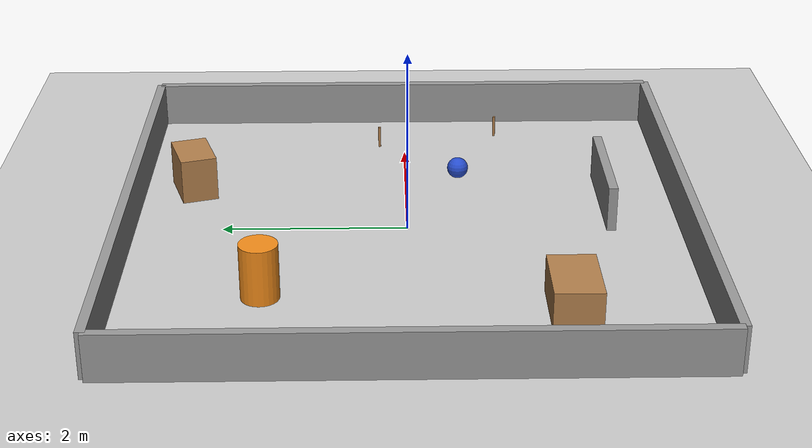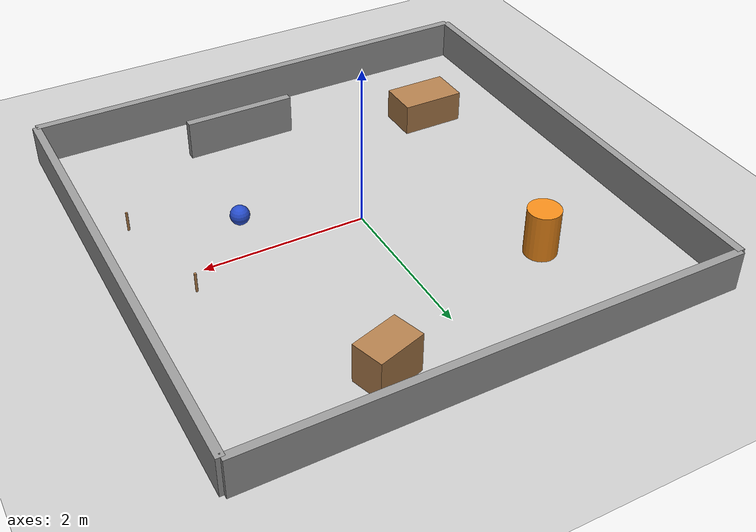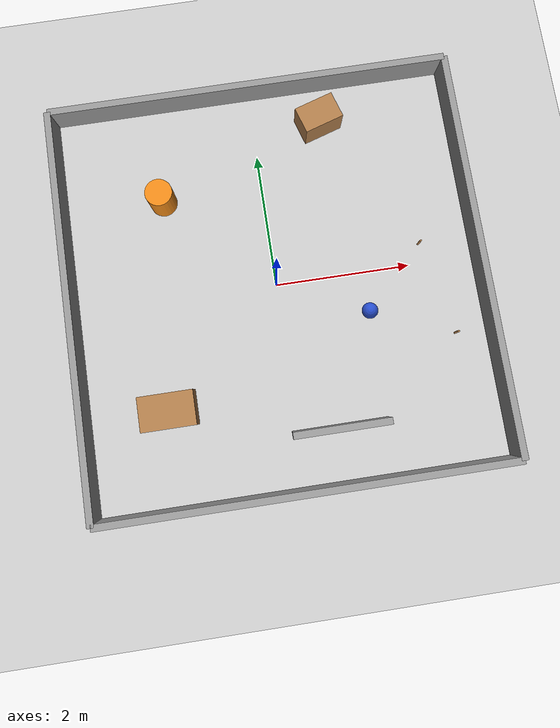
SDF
<sdf version="1.6">
 <world name="sala_alvos">
  <include><uri>model://ground_plane</uri></include>
  <include><uri>model://sun</uri></include>
  <model name="paredes">
   <static>true</static>
   <link name="link">
    <collision name="c_norte">
     <pose>3 0 0.25 0 0 0</pose>
     <geometry><box><size>0.1 6 0.5</size></box></geometry>
    </collision>
    <visual name="v_norte">
     <pose>3 0 0.25 0 0 0</pose>
     <geometry><box><size>0.1 6 0.5</size></box></geometry>
     <material>
      <script><uri>file://media/materials/scripts/gazebo.material</uri><name>Gazebo/Grey</name></script>
     </material>
    </visual>
    <collision name="c_sul">
     <pose>-3 0 0.25 0 0 0</pose>
     <geometry><box><size>0.1 6 0.5</size></box></geometry>
    </collision>
    <visual name="v_sul">
     <pose>-3 0 0.25 0 0 0</pose>
     <geometry><box><size>0.1 6 0.5</size></box></geometry>
     <material>
      <script><uri>file://media/materials/scripts/gazebo.material</uri><name>Gazebo/Grey</name></script>
     </material>
    </visual>
    <collision name="c_leste">
     <pose>0 -3 0.25 0 0 0</pose>
     <geometry><box><size>6 0.1 0.5</size></box></geometry>
    </collision>
    <visual name="v_leste">
     <pose>0 -3 0.25 0 0 0</pose>
     <geometry><box><size>6 0.1 0.5</size></box></geometry>
     <material>
      <script><uri>file://media/materials/scripts/gazebo.material</uri><name>Gazebo/Grey</name></script>
     </material>
    </visual>
    <collision name="c_oeste">
     <pose>0 3 0.25 0 0 0</pose>
     <geometry><box><size>6 0.1 0.5</size></box></geometry>
    </collision>
    <visual name="v_oeste">
     <pose>0 3 0.25 0 0 0</pose>
     <geometry><box><size>6 0.1 0.5</size></box></geometry>
     <material>
      <script><uri>file://media/materials/scripts/gazebo.material</uri><name>Gazebo/Grey</name></script>
     </material>
    </visual>
   </link>
  </model>
  <model name="pilar">
   <static>true</static>
   <pose>-1.5 1.5 0.3 0 0 0</pose>
   <link name="link">
    <collision name="c">
     <geometry><cylinder><radius>0.2</radius><length>0.6</length></cylinder></geometry>
    </collision>
    <visual name="v">
     <geometry><cylinder><radius>0.2</radius><length>0.6</length></cylinder></geometry>
     <material>
      <script><uri>file://media/materials/scripts/gazebo.material</uri><name>Gazebo/Orange</name></script>
     </material>
    </visual>
   </link>
  </model>
  <model name="caixa_a">
   <static>true</static>
   <pose>1.0 2.4 0.25 0 0 0.3</pose>
   <link name="link">
    <collision name="c"><geometry><box><size>0.6 0.4 0.5</size></box></geometry></collision>
    <visual name="v">
     <geometry><box><size>0.6 0.4 0.5</size></box></geometry>
     <material>
      <script><uri>file://media/materials/scripts/gazebo.material</uri><name>Gazebo/Wood</name></script>
     </material>
    </visual>
   </link>
  </model>
  <model name="caixa_b">
   <static>true</static>
   <pose>-1.8 -1.6 0.2 0 0 0</pose>
   <link name="link">
    <collision name="c"><geometry><box><size>0.8 0.5 0.4</size></box></geometry></collision>
    <visual name="v">
     <geometry><box><size>0.8 0.5 0.4</size></box></geometry>
     <material>
      <script><uri>file://media/materials/scripts/gazebo.material</uri><name>Gazebo/Wood</name></script>
     </material>
    </visual>
   </link>
  </model>
  <model name="muro">
   <static>true</static>
   <pose>0.6 -2.2 0.25 0 0 0</pose>
   <link name="link">
    <collision name="c"><geometry><box><size>1.4 0.1 0.5</size></box></geometry></collision>
    <visual name="v">
     <geometry><box><size>1.4 0.1 0.5</size></box></geometry>
     <material>
      <script><uri>file://media/materials/scripts/gazebo.material</uri><name>Gazebo/Grey</name></script>
     </material>
    </visual>
   </link>
  </model>
  <model name="poste_1">
   <static>true</static>
   <pose>2.2 0.3 0.125 0 0 0</pose>
   <link name="link">
    <collision name="c">
     <geometry><cylinder><radius>0.015</radius><length>0.25</length></cylinder></geometry>
    </collision>
    <visual name="v">
     <geometry><cylinder><radius>0.015</radius><length>0.25</length></cylinder></geometry>
     <material>
      <script><uri>file://media/materials/scripts/gazebo.material</uri><name>Gazebo/Wood</name></script>
     </material>
    </visual>
   </link>
  </model>
  <model name="poste_2">
   <static>true</static>
   <pose>2.5 -1.1 0.125 0 0 0</pose>
   <link name="link">
    <collision name="c">
     <geometry><cylinder><radius>0.015</radius><length>0.25</length></cylinder></geometry>
    </collision>
    <visual name="v">
     <geometry><cylinder><radius>0.015</radius><length>0.25</length></cylinder></geometry>
     <material>
      <script><uri>file://media/materials/scripts/gazebo.material</uri><name>Gazebo/Wood</name></script>
     </material>
    </visual>
   </link>
  </model>
  <model name="bola">
   <pose>1.3 -0.6 0.12 0 0 0</pose>
   <link name="link">
    <inertial><mass>0.2</mass><inertia><ixx>0.0012</ixx><iyy>0.0012</iyy><izz>0.0012</izz></inertia></inertial>
    <collision name="c"><geometry><sphere><radius>0.12</radius></sphere></geometry></collision>
    <visual name="v">
     <geometry><sphere><radius>0.12</radius></sphere></geometry>
     <material>
      <script><uri>file://media/materials/scripts/gazebo.material</uri><name>Gazebo/Blue</name></script>
     </material>
    </visual>
   </link>
  </model>
 </world>
</sdf>
